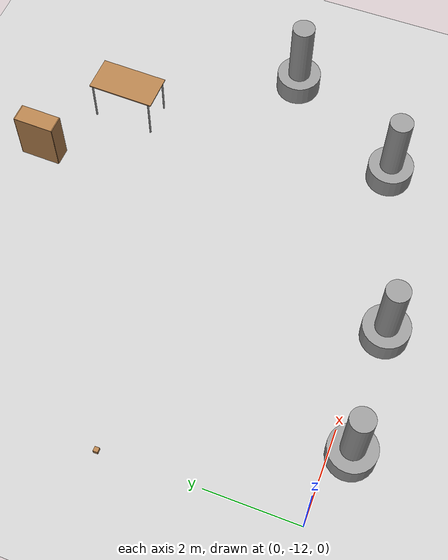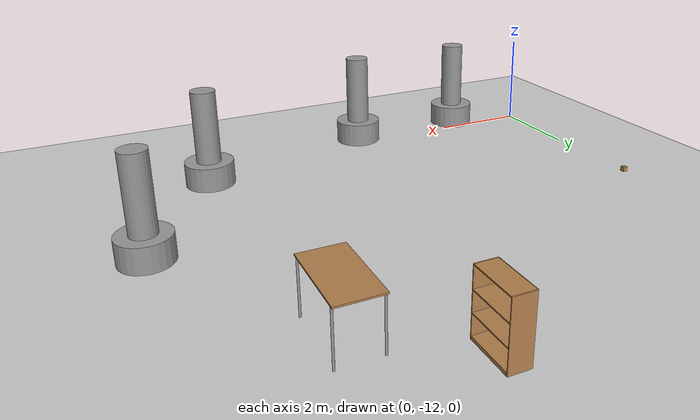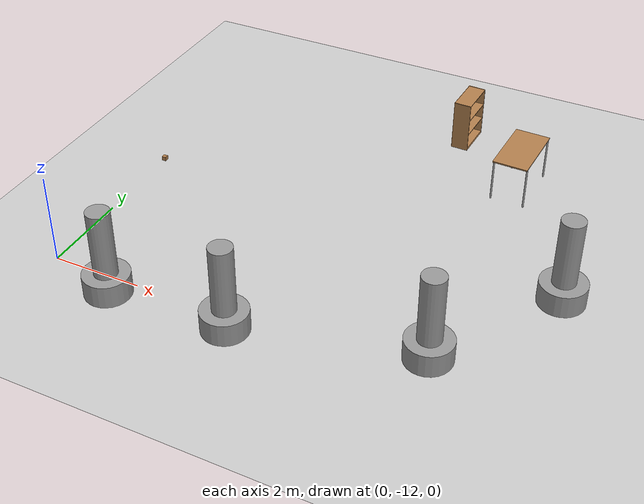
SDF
<sdf version="1.6">
 <world name="default">
  <model name="ground_plane">
   <static>1</static>
   <link name="link">
    <collision name="collision">
     <geometry><plane><normal>0 0 1</normal><size>100 100</size></plane></geometry>
     <surface>
      <contact><collide_bitmask>65535</collide_bitmask></contact>
      <friction><ode><mu>100</mu><mu2>50</mu2></ode></friction>
     </surface>
    </collision>
    <visual name="visual">
     <cast_shadows>0</cast_shadows>
     <geometry><plane><normal>0 0 1</normal><size>100 100</size></plane></geometry>
     <material>
      <script><uri>file://media/materials/scripts/gazebo.material</uri><name>Gazebo/Grey</name></script>
     </material>
    </visual>
   </link>
  </model>
  <model name="lidar_feature">
   <link name="link_0">
    <pose>0 0 -0.5 0 -0 0</pose>
    <inertial>
     <mass>1</mass>
     <inertia><ixx>0.145833</ixx><ixy>0</ixy><ixz>0</ixz><iyy>0.145833</iyy><iyz>0</iyz><izz>0.125</izz></inertia>
    </inertial>
    <visual name="visual">
     <geometry><cylinder><radius>0.5</radius><length>0.5</length></cylinder></geometry>
     <material>
      <lighting>1</lighting>
      <script><uri>file://media/materials/scripts/gazebo.material</uri><name>Gazebo/Grey</name></script>
      <shader type="pixel"><normal_map>__default__</normal_map></shader>
      <ambient>0.3 0.3 0.3 1</ambient>
      <diffuse>0.7 0.7 0.7 1</diffuse>
      <specular>0.01 0.01 0.01 1</specular>
      <emissive>0 0 0 1</emissive>
     </material>
    </visual>
    <collision name="collision">
     <geometry><cylinder><radius>0.5</radius><length>0.5</length></cylinder></geometry>
     <surface>
      <friction>
       <ode><mu>1</mu><mu2>1</mu2><fdir1>0 0 0</fdir1><slip1>0</slip1><slip2>0</slip2></ode>
       <torsional>
        <coefficient>1</coefficient>
        <patch_radius>0</patch_radius>
        <surface_radius>0</surface_radius>
        <use_patch_radius>1</use_patch_radius>
        <ode><slip>0</slip></ode>
       </torsional>
      </friction>
      <bounce><restitution_coefficient>0</restitution_coefficient><threshold>1e+06</threshold></bounce>
      <contact>
       <collide_without_contact>0</collide_without_contact>
       <collide_without_contact_bitmask>1</collide_without_contact_bitmask>
       <collide_bitmask>1</collide_bitmask>
       <ode>
        <soft_cfm>0</soft_cfm>
        <soft_erp>0.2</soft_erp>
        <kp>1e+13</kp>
        <kd>1</kd>
        <max_vel>0.01</max_vel>
        <min_depth>0</min_depth>
       </ode>
       <bullet>
        <split_impulse>1</split_impulse>
        <split_impulse_penetration_threshold>-0.01</split_impulse_penetration_threshold>
        <soft_cfm>0</soft_cfm>
        <soft_erp>0.2</soft_erp>
        <kp>1e+13</kp>
        <kd>1</kd>
       </bullet>
      </contact>
     </surface>
    </collision>
   </link>
   <link name="link_0_clone">
    <pose>0 0 0.5 0 -0 0</pose>
    <inertial>
     <mass>1</mass>
     <inertia><ixx>0.145833</ixx><ixy>0</ixy><ixz>0</ixz><iyy>0.145833</iyy><iyz>0</iyz><izz>0.125</izz></inertia>
    </inertial>
    <visual name="visual">
     <geometry><cylinder><radius>0.25</radius><length>1.5</length></cylinder></geometry>
     <material>
      <lighting>1</lighting>
      <script><uri>file://media/materials/scripts/gazebo.material</uri><name>Gazebo/Grey</name></script>
      <shader type="pixel"><normal_map>__default__</normal_map></shader>
      <ambient>0.3 0.3 0.3 1</ambient>
      <diffuse>0.7 0.7 0.7 1</diffuse>
      <specular>0.01 0.01 0.01 1</specular>
      <emissive>0 0 0 1</emissive>
     </material>
    </visual>
    <collision name="collision">
     <geometry><cylinder><radius>0.25</radius><length>1.5</length></cylinder></geometry>
     <surface>
      <friction>
       <ode><mu>1</mu><mu2>1</mu2><fdir1>0 0 0</fdir1><slip1>0</slip1><slip2>0</slip2></ode>
       <torsional>
        <coefficient>1</coefficient>
        <patch_radius>0</patch_radius>
        <surface_radius>0</surface_radius>
        <use_patch_radius>1</use_patch_radius>
        <ode><slip>0</slip></ode>
       </torsional>
      </friction>
      <bounce><restitution_coefficient>0</restitution_coefficient><threshold>1e+06</threshold></bounce>
      <contact>
       <collide_without_contact>0</collide_without_contact>
       <collide_without_contact_bitmask>1</collide_without_contact_bitmask>
       <collide_bitmask>1</collide_bitmask>
       <ode>
        <soft_cfm>0</soft_cfm>
        <soft_erp>0.2</soft_erp>
        <kp>1e+13</kp>
        <kd>1</kd>
        <max_vel>0.01</max_vel>
        <min_depth>0</min_depth>
       </ode>
       <bullet>
        <split_impulse>1</split_impulse>
        <split_impulse_penetration_threshold>-0.01</split_impulse_penetration_threshold>
        <soft_cfm>0</soft_cfm>
        <soft_erp>0.2</soft_erp>
        <kp>1e+13</kp>
        <kd>1</kd>
       </bullet>
      </contact>
     </surface>
    </collision>
   </link>
   <joint name="link_0_JOINT_0" type="fixed">
    <parent>link_0</parent>
    <child>link_0_clone</child>
    <physics>
     <ode><limit><cfm>0</cfm><erp>0.2</erp></limit><suspension><cfm>0</cfm><erp>0.2</erp></suspension></ode>
    </physics>
   </joint>
   <static>0</static>
   <pose>1.58971 -12.406 0.75 0 -0 0</pose>
  </model>
  <model name="lidar_feature_0">
   <link name="link_0">
    <pose>0 0 -0.5 0 -0 0</pose>
    <inertial>
     <mass>1</mass>
     <inertia><ixx>0.145833</ixx><ixy>0</ixy><ixz>0</ixz><iyy>0.145833</iyy><iyz>0</iyz><izz>0.125</izz></inertia>
    </inertial>
    <visual name="visual">
     <geometry><cylinder><radius>0.5</radius><length>0.5</length></cylinder></geometry>
     <material>
      <lighting>1</lighting>
      <script><uri>file://media/materials/scripts/gazebo.material</uri><name>Gazebo/Grey</name></script>
      <shader type="pixel"><normal_map>__default__</normal_map></shader>
      <ambient>0.3 0.3 0.3 1</ambient>
      <diffuse>0.7 0.7 0.7 1</diffuse>
      <specular>0.01 0.01 0.01 1</specular>
      <emissive>0 0 0 1</emissive>
     </material>
    </visual>
    <collision name="collision">
     <geometry><cylinder><radius>0.5</radius><length>0.5</length></cylinder></geometry>
     <surface>
      <friction>
       <ode><mu>1</mu><mu2>1</mu2><fdir1>0 0 0</fdir1><slip1>0</slip1><slip2>0</slip2></ode>
       <torsional>
        <coefficient>1</coefficient>
        <patch_radius>0</patch_radius>
        <surface_radius>0</surface_radius>
        <use_patch_radius>1</use_patch_radius>
        <ode><slip>0</slip></ode>
       </torsional>
      </friction>
      <bounce><restitution_coefficient>0</restitution_coefficient><threshold>1e+06</threshold></bounce>
      <contact>
       <collide_without_contact>0</collide_without_contact>
       <collide_without_contact_bitmask>1</collide_without_contact_bitmask>
       <collide_bitmask>1</collide_bitmask>
       <ode>
        <soft_cfm>0</soft_cfm>
        <soft_erp>0.2</soft_erp>
        <kp>1e+13</kp>
        <kd>1</kd>
        <max_vel>0.01</max_vel>
        <min_depth>0</min_depth>
       </ode>
       <bullet>
        <split_impulse>1</split_impulse>
        <split_impulse_penetration_threshold>-0.01</split_impulse_penetration_threshold>
        <soft_cfm>0</soft_cfm>
        <soft_erp>0.2</soft_erp>
        <kp>1e+13</kp>
        <kd>1</kd>
       </bullet>
      </contact>
     </surface>
    </collision>
   </link>
   <link name="link_0_clone">
    <pose>0 0 0.5 0 -0 0</pose>
    <inertial>
     <mass>1</mass>
     <inertia><ixx>0.145833</ixx><ixy>0</ixy><ixz>0</ixz><iyy>0.145833</iyy><iyz>0</iyz><izz>0.125</izz></inertia>
    </inertial>
    <visual name="visual">
     <geometry><cylinder><radius>0.25</radius><length>1.5</length></cylinder></geometry>
     <material>
      <lighting>1</lighting>
      <script><uri>file://media/materials/scripts/gazebo.material</uri><name>Gazebo/Grey</name></script>
      <shader type="pixel"><normal_map>__default__</normal_map></shader>
      <ambient>0.3 0.3 0.3 1</ambient>
      <diffuse>0.7 0.7 0.7 1</diffuse>
      <specular>0.01 0.01 0.01 1</specular>
      <emissive>0 0 0 1</emissive>
     </material>
    </visual>
    <collision name="collision">
     <geometry><cylinder><radius>0.25</radius><length>1.5</length></cylinder></geometry>
     <surface>
      <friction>
       <ode><mu>1</mu><mu2>1</mu2><fdir1>0 0 0</fdir1><slip1>0</slip1><slip2>0</slip2></ode>
       <torsional>
        <coefficient>1</coefficient>
        <patch_radius>0</patch_radius>
        <surface_radius>0</surface_radius>
        <use_patch_radius>1</use_patch_radius>
        <ode><slip>0</slip></ode>
       </torsional>
      </friction>
      <bounce><restitution_coefficient>0</restitution_coefficient><threshold>1e+06</threshold></bounce>
      <contact>
       <collide_without_contact>0</collide_without_contact>
       <collide_without_contact_bitmask>1</collide_without_contact_bitmask>
       <collide_bitmask>1</collide_bitmask>
       <ode>
        <soft_cfm>0</soft_cfm>
        <soft_erp>0.2</soft_erp>
        <kp>1e+13</kp>
        <kd>1</kd>
        <max_vel>0.01</max_vel>
        <min_depth>0</min_depth>
       </ode>
       <bullet>
        <split_impulse>1</split_impulse>
        <split_impulse_penetration_threshold>-0.01</split_impulse_penetration_threshold>
        <soft_cfm>0</soft_cfm>
        <soft_erp>0.2</soft_erp>
        <kp>1e+13</kp>
        <kd>1</kd>
       </bullet>
      </contact>
     </surface>
    </collision>
   </link>
   <joint name="link_0_JOINT_0" type="fixed">
    <parent>link_0</parent>
    <child>link_0_clone</child>
    <physics>
     <ode><limit><cfm>0</cfm><erp>0.2</erp></limit><suspension><cfm>0</cfm><erp>0.2</erp></suspension></ode>
    </physics>
   </joint>
   <static>0</static>
   <pose>4.24804 -12.3006 0.75 0 -0 0</pose>
  </model>
  <model name="lidar_feature_1">
   <link name="link_0">
    <pose>0 0 -0.5 0 -0 0</pose>
    <inertial>
     <mass>1</mass>
     <inertia><ixx>0.145833</ixx><ixy>0</ixy><ixz>0</ixz><iyy>0.145833</iyy><iyz>0</iyz><izz>0.125</izz></inertia>
    </inertial>
    <visual name="visual">
     <geometry><cylinder><radius>0.5</radius><length>0.5</length></cylinder></geometry>
     <material>
      <lighting>1</lighting>
      <script><uri>file://media/materials/scripts/gazebo.material</uri><name>Gazebo/Grey</name></script>
      <shader type="pixel"><normal_map>__default__</normal_map></shader>
      <ambient>0.3 0.3 0.3 1</ambient>
      <diffuse>0.7 0.7 0.7 1</diffuse>
      <specular>0.01 0.01 0.01 1</specular>
      <emissive>0 0 0 1</emissive>
     </material>
    </visual>
    <collision name="collision">
     <geometry><cylinder><radius>0.5</radius><length>0.5</length></cylinder></geometry>
     <surface>
      <friction>
       <ode><mu>1</mu><mu2>1</mu2><fdir1>0 0 0</fdir1><slip1>0</slip1><slip2>0</slip2></ode>
       <torsional>
        <coefficient>1</coefficient>
        <patch_radius>0</patch_radius>
        <surface_radius>0</surface_radius>
        <use_patch_radius>1</use_patch_radius>
        <ode><slip>0</slip></ode>
       </torsional>
      </friction>
      <bounce><restitution_coefficient>0</restitution_coefficient><threshold>1e+06</threshold></bounce>
      <contact>
       <collide_without_contact>0</collide_without_contact>
       <collide_without_contact_bitmask>1</collide_without_contact_bitmask>
       <collide_bitmask>1</collide_bitmask>
       <ode>
        <soft_cfm>0</soft_cfm>
        <soft_erp>0.2</soft_erp>
        <kp>1e+13</kp>
        <kd>1</kd>
        <max_vel>0.01</max_vel>
        <min_depth>0</min_depth>
       </ode>
       <bullet>
        <split_impulse>1</split_impulse>
        <split_impulse_penetration_threshold>-0.01</split_impulse_penetration_threshold>
        <soft_cfm>0</soft_cfm>
        <soft_erp>0.2</soft_erp>
        <kp>1e+13</kp>
        <kd>1</kd>
       </bullet>
      </contact>
     </surface>
    </collision>
   </link>
   <link name="link_0_clone">
    <pose>0 0 0.5 0 -0 0</pose>
    <inertial>
     <mass>1</mass>
     <inertia><ixx>0.145833</ixx><ixy>0</ixy><ixz>0</ixz><iyy>0.145833</iyy><iyz>0</iyz><izz>0.125</izz></inertia>
    </inertial>
    <visual name="visual">
     <geometry><cylinder><radius>0.25</radius><length>1.5</length></cylinder></geometry>
     <material>
      <lighting>1</lighting>
      <script><uri>file://media/materials/scripts/gazebo.material</uri><name>Gazebo/Grey</name></script>
      <shader type="pixel"><normal_map>__default__</normal_map></shader>
      <ambient>0.3 0.3 0.3 1</ambient>
      <diffuse>0.7 0.7 0.7 1</diffuse>
      <specular>0.01 0.01 0.01 1</specular>
      <emissive>0 0 0 1</emissive>
     </material>
    </visual>
    <collision name="collision">
     <geometry><cylinder><radius>0.25</radius><length>1.5</length></cylinder></geometry>
     <surface>
      <friction>
       <ode><mu>1</mu><mu2>1</mu2><fdir1>0 0 0</fdir1><slip1>0</slip1><slip2>0</slip2></ode>
       <torsional>
        <coefficient>1</coefficient>
        <patch_radius>0</patch_radius>
        <surface_radius>0</surface_radius>
        <use_patch_radius>1</use_patch_radius>
        <ode><slip>0</slip></ode>
       </torsional>
      </friction>
      <bounce><restitution_coefficient>0</restitution_coefficient><threshold>1e+06</threshold></bounce>
      <contact>
       <collide_without_contact>0</collide_without_contact>
       <collide_without_contact_bitmask>1</collide_without_contact_bitmask>
       <collide_bitmask>1</collide_bitmask>
       <ode>
        <soft_cfm>0</soft_cfm>
        <soft_erp>0.2</soft_erp>
        <kp>1e+13</kp>
        <kd>1</kd>
        <max_vel>0.01</max_vel>
        <min_depth>0</min_depth>
       </ode>
       <bullet>
        <split_impulse>1</split_impulse>
        <split_impulse_penetration_threshold>-0.01</split_impulse_penetration_threshold>
        <soft_cfm>0</soft_cfm>
        <soft_erp>0.2</soft_erp>
        <kp>1e+13</kp>
        <kd>1</kd>
       </bullet>
      </contact>
     </surface>
    </collision>
   </link>
   <joint name="link_0_JOINT_0" type="fixed">
    <parent>link_0</parent>
    <child>link_0_clone</child>
    <physics>
     <ode><limit><cfm>0</cfm><erp>0.2</erp></limit><suspension><cfm>0</cfm><erp>0.2</erp></suspension></ode>
    </physics>
   </joint>
   <static>0</static>
   <pose>8.05739 -11.3042 0.75 0 -0 0</pose>
  </model>
  <model name="lidar_feature_2">
   <link name="link_0">
    <pose>0 0 -0.5 0 -0 0</pose>
    <inertial>
     <mass>1</mass>
     <inertia><ixx>0.145833</ixx><ixy>0</ixy><ixz>0</ixz><iyy>0.145833</iyy><iyz>0</iyz><izz>0.125</izz></inertia>
    </inertial>
    <visual name="visual">
     <geometry><cylinder><radius>0.5</radius><length>0.5</length></cylinder></geometry>
     <material>
      <lighting>1</lighting>
      <script><uri>file://media/materials/scripts/gazebo.material</uri><name>Gazebo/Grey</name></script>
      <shader type="pixel"><normal_map>__default__</normal_map></shader>
      <ambient>0.3 0.3 0.3 1</ambient>
      <diffuse>0.7 0.7 0.7 1</diffuse>
      <specular>0.01 0.01 0.01 1</specular>
      <emissive>0 0 0 1</emissive>
     </material>
    </visual>
    <collision name="collision">
     <geometry><cylinder><radius>0.5</radius><length>0.5</length></cylinder></geometry>
     <surface>
      <friction>
       <ode><mu>1</mu><mu2>1</mu2><fdir1>0 0 0</fdir1><slip1>0</slip1><slip2>0</slip2></ode>
       <torsional>
        <coefficient>1</coefficient>
        <patch_radius>0</patch_radius>
        <surface_radius>0</surface_radius>
        <use_patch_radius>1</use_patch_radius>
        <ode><slip>0</slip></ode>
       </torsional>
      </friction>
      <bounce><restitution_coefficient>0</restitution_coefficient><threshold>1e+06</threshold></bounce>
      <contact>
       <collide_without_contact>0</collide_without_contact>
       <collide_without_contact_bitmask>1</collide_without_contact_bitmask>
       <collide_bitmask>1</collide_bitmask>
       <ode>
        <soft_cfm>0</soft_cfm>
        <soft_erp>0.2</soft_erp>
        <kp>1e+13</kp>
        <kd>1</kd>
        <max_vel>0.01</max_vel>
        <min_depth>0</min_depth>
       </ode>
       <bullet>
        <split_impulse>1</split_impulse>
        <split_impulse_penetration_threshold>-0.01</split_impulse_penetration_threshold>
        <soft_cfm>0</soft_cfm>
        <soft_erp>0.2</soft_erp>
        <kp>1e+13</kp>
        <kd>1</kd>
       </bullet>
      </contact>
     </surface>
    </collision>
   </link>
   <link name="link_0_clone">
    <pose>0 0 0.5 0 -0 0</pose>
    <inertial>
     <mass>1</mass>
     <inertia><ixx>0.145833</ixx><ixy>0</ixy><ixz>0</ixz><iyy>0.145833</iyy><iyz>0</iyz><izz>0.125</izz></inertia>
    </inertial>
    <visual name="visual">
     <geometry><cylinder><radius>0.25</radius><length>1.5</length></cylinder></geometry>
     <material>
      <lighting>1</lighting>
      <script><uri>file://media/materials/scripts/gazebo.material</uri><name>Gazebo/Grey</name></script>
      <shader type="pixel"><normal_map>__default__</normal_map></shader>
      <ambient>0.3 0.3 0.3 1</ambient>
      <diffuse>0.7 0.7 0.7 1</diffuse>
      <specular>0.01 0.01 0.01 1</specular>
      <emissive>0 0 0 1</emissive>
     </material>
    </visual>
    <collision name="collision">
     <geometry><cylinder><radius>0.25</radius><length>1.5</length></cylinder></geometry>
     <surface>
      <friction>
       <ode><mu>1</mu><mu2>1</mu2><fdir1>0 0 0</fdir1><slip1>0</slip1><slip2>0</slip2></ode>
       <torsional>
        <coefficient>1</coefficient>
        <patch_radius>0</patch_radius>
        <surface_radius>0</surface_radius>
        <use_patch_radius>1</use_patch_radius>
        <ode><slip>0</slip></ode>
       </torsional>
      </friction>
      <bounce><restitution_coefficient>0</restitution_coefficient><threshold>1e+06</threshold></bounce>
      <contact>
       <collide_without_contact>0</collide_without_contact>
       <collide_without_contact_bitmask>1</collide_without_contact_bitmask>
       <collide_bitmask>1</collide_bitmask>
       <ode>
        <soft_cfm>0</soft_cfm>
        <soft_erp>0.2</soft_erp>
        <kp>1e+13</kp>
        <kd>1</kd>
        <max_vel>0.01</max_vel>
        <min_depth>0</min_depth>
       </ode>
       <bullet>
        <split_impulse>1</split_impulse>
        <split_impulse_penetration_threshold>-0.01</split_impulse_penetration_threshold>
        <soft_cfm>0</soft_cfm>
        <soft_erp>0.2</soft_erp>
        <kp>1e+13</kp>
        <kd>1</kd>
       </bullet>
      </contact>
     </surface>
    </collision>
   </link>
   <joint name="link_0_JOINT_0" type="fixed">
    <parent>link_0</parent>
    <child>link_0_clone</child>
    <physics>
     <ode><limit><cfm>0</cfm><erp>0.2</erp></limit><suspension><cfm>0</cfm><erp>0.2</erp></suspension></ode>
    </physics>
   </joint>
   <static>0</static>
   <pose>9.79434 -8.5961 0.75 0 -0 0</pose>
  </model>
  <model name="wood_cube_10cm">
   <link name="link">
    <pose>0 0 0.05 0 -0 0</pose>
    <inertial>
     <mass>0.5167</mass>
     <inertia>
      <ixx>0.000861167</ixx>
      <ixy>0</ixy>
      <ixz>0</ixz>
      <iyy>0.000861167</iyy>
      <iyz>0</iyz>
      <izz>0.000861167</izz>
     </inertia>
    </inertial>
    <collision name="collision">
     <geometry><box><size>0.1 0.1 0.1</size></box></geometry>
     <surface>
      <contact>
       <poissons_ratio>0.347</poissons_ratio>
       <elastic_modulus>8.8e+09</elastic_modulus>
       <ode><kp>100000</kp><kd>100</kd><max_vel>100</max_vel><min_depth>0.001</min_depth></ode>
      </contact>
      <friction>
       <torsional>
        <coefficient>1</coefficient>
        <use_patch_radius>0</use_patch_radius>
        <surface_radius>0.01</surface_radius>
       </torsional>
      </friction>
     </surface>
    </collision>
    <visual name="visual">
     <geometry><box><size>0.1 0.1 0.1</size></box></geometry>
     <material>
      <script><uri>file://media/materials/scripts/gazebo.material</uri><name>Gazebo/Wood</name></script>
     </material>
    </visual>
   </link>
   <pose>-0.03659 -7.83833 -0.001013 0 -0 0</pose>
  </model>
  <model name="bookshelf">
   <static>1</static>
   <link name="link">
    <inertial><mass>1</mass></inertial>
    <collision name="back">
     <pose>0 0.005 0.6 0 -0 0</pose>
     <geometry><box><size>0.9 0.01 1.2</size></box></geometry>
    </collision>
    <visual name="visual1">
     <pose>0 0.005 0.6 0 -0 0</pose>
     <geometry><box><size>0.9 0.01 1.2</size></box></geometry>
     <material>
      <script><uri>file://media/materials/scripts/gazebo.material</uri><name>Gazebo/Wood</name></script>
     </material>
    </visual>
    <collision name="left_side">
     <pose>0.45 -0.195 0.6 0 -0 0</pose>
     <geometry><box><size>0.02 0.4 1.2</size></box></geometry>
    </collision>
    <visual name="visual2">
     <pose>0.45 -0.195 0.6 0 -0 0</pose>
     <geometry><box><size>0.02 0.4 1.2</size></box></geometry>
     <material>
      <script><uri>file://media/materials/scripts/gazebo.material</uri><name>Gazebo/Wood</name></script>
     </material>
    </visual>
    <collision name="right_side">
     <pose>-0.45 -0.195 0.6 0 -0 0</pose>
     <geometry><box><size>0.02 0.4 1.2</size></box></geometry>
    </collision>
    <visual name="visual3">
     <pose>-0.45 -0.195 0.6 0 -0 0</pose>
     <geometry><box><size>0.02 0.4 1.2</size></box></geometry>
     <material>
      <script><uri>file://media/materials/scripts/gazebo.material</uri><name>Gazebo/Wood</name></script>
     </material>
    </visual>
    <collision name="bottom">
     <pose>0 -0.195 0.03 0 -0 0</pose>
     <geometry><box><size>0.88 0.4 0.06</size></box></geometry>
    </collision>
    <visual name="visual4">
     <pose>0 -0.195 0.03 0 -0 0</pose>
     <geometry><box><size>0.88 0.4 0.06</size></box></geometry>
     <material>
      <script><uri>file://media/materials/scripts/gazebo.material</uri><name>Gazebo/Wood</name></script>
     </material>
    </visual>
    <collision name="top">
     <pose>0 -0.195 1.19 0 -0 0</pose>
     <geometry><box><size>0.88 0.4 0.02</size></box></geometry>
    </collision>
    <visual name="visual5">
     <pose>0 -0.195 1.19 0 -0 0</pose>
     <geometry><box><size>0.88 0.4 0.02</size></box></geometry>
     <material>
      <script><uri>file://media/materials/scripts/gazebo.material</uri><name>Gazebo/Wood</name></script>
     </material>
    </visual>
    <collision name="low_shelf">
     <pose>0 -0.195 0.43 0 -0 0</pose>
     <geometry><box><size>0.88 0.4 0.02</size></box></geometry>
    </collision>
    <visual name="visual6">
     <pose>0 -0.195 0.43 0 -0 0</pose>
     <geometry><box><size>0.88 0.4 0.02</size></box></geometry>
     <material>
      <script><uri>file://media/materials/scripts/gazebo.material</uri><name>Gazebo/Wood</name></script>
     </material>
    </visual>
    <collision name="high_shelf">
     <pose>0 -0.195 0.8 0 -0 0</pose>
     <geometry><box><size>0.88 0.4 0.02</size></box></geometry>
    </collision>
    <visual name="visual7">
     <pose>0 -0.195 0.8 0 -0 0</pose>
     <geometry><box><size>0.88 0.4 0.02</size></box></geometry>
     <material>
      <script><uri>file://media/materials/scripts/gazebo.material</uri><name>Gazebo/Wood</name></script>
     </material>
    </visual>
   </link>
   <pose>5.78968 -3.8094 0 0 -0 1.54669</pose>
  </model>
  <model name="table">
   <static>1</static>
   <link name="link">
    <collision name="surface">
     <pose>0 0 1 0 -0 0</pose>
     <geometry><box><size>1.5 0.8 0.03</size></box></geometry>
     <surface><friction><ode><mu>0.6</mu><mu2>0.6</mu2></ode></friction></surface>
    </collision>
    <visual name="visual1">
     <pose>0 0 1 0 -0 0</pose>
     <geometry><box><size>1.5 0.8 0.03</size></box></geometry>
     <material>
      <script><uri>file://media/materials/scripts/gazebo.material</uri><name>Gazebo/Wood</name></script>
     </material>
    </visual>
    <collision name="front_left_leg">
     <pose>0.68 0.38 0.5 0 -0 0</pose>
     <geometry><cylinder><radius>0.02</radius><length>1</length></cylinder></geometry>
    </collision>
    <visual name="front_left_leg">
     <pose>0.68 0.38 0.5 0 -0 0</pose>
     <geometry><cylinder><radius>0.02</radius><length>1</length></cylinder></geometry>
     <material>
      <script><uri>file://media/materials/scripts/gazebo.material</uri><name>Gazebo/Grey</name></script>
     </material>
    </visual>
    <collision name="front_right_leg">
     <pose>0.68 -0.38 0.5 0 -0 0</pose>
     <geometry><cylinder><radius>0.02</radius><length>1</length></cylinder></geometry>
    </collision>
    <visual name="front_right_leg">
     <pose>0.68 -0.38 0.5 0 -0 0</pose>
     <geometry><cylinder><radius>0.02</radius><length>1</length></cylinder></geometry>
     <material>
      <script><uri>file://media/materials/scripts/gazebo.material</uri><name>Gazebo/Grey</name></script>
     </material>
    </visual>
    <collision name="back_right_leg">
     <pose>-0.68 -0.38 0.5 0 -0 0</pose>
     <geometry><cylinder><radius>0.02</radius><length>1</length></cylinder></geometry>
    </collision>
    <visual name="back_right_leg">
     <pose>-0.68 -0.38 0.5 0 -0 0</pose>
     <geometry><cylinder><radius>0.02</radius><length>1</length></cylinder></geometry>
     <material>
      <script><uri>file://media/materials/scripts/gazebo.material</uri><name>Gazebo/Grey</name></script>
     </material>
    </visual>
    <collision name="back_left_leg">
     <pose>-0.68 0.38 0.5 0 -0 0</pose>
     <geometry><cylinder><radius>0.02</radius><length>1</length></cylinder></geometry>
    </collision>
    <visual name="back_left_leg">
     <pose>-0.68 0.38 0.5 0 -0 0</pose>
     <geometry><cylinder><radius>0.02</radius><length>1</length></cylinder></geometry>
     <material>
      <script><uri>file://media/materials/scripts/gazebo.material</uri><name>Gazebo/Grey</name></script>
     </material>
    </visual>
   </link>
   <pose>7.72877 -5.183 0 0 0 -1.59722</pose>
  </model>
 </world>
</sdf>
